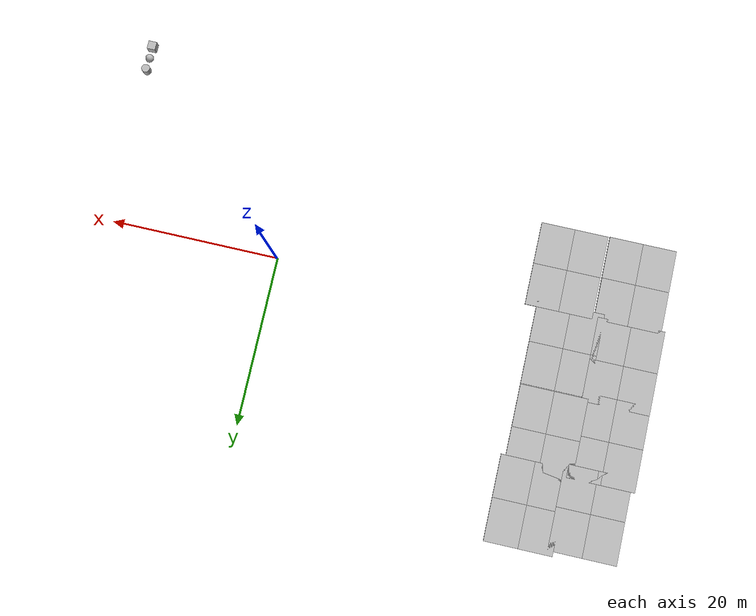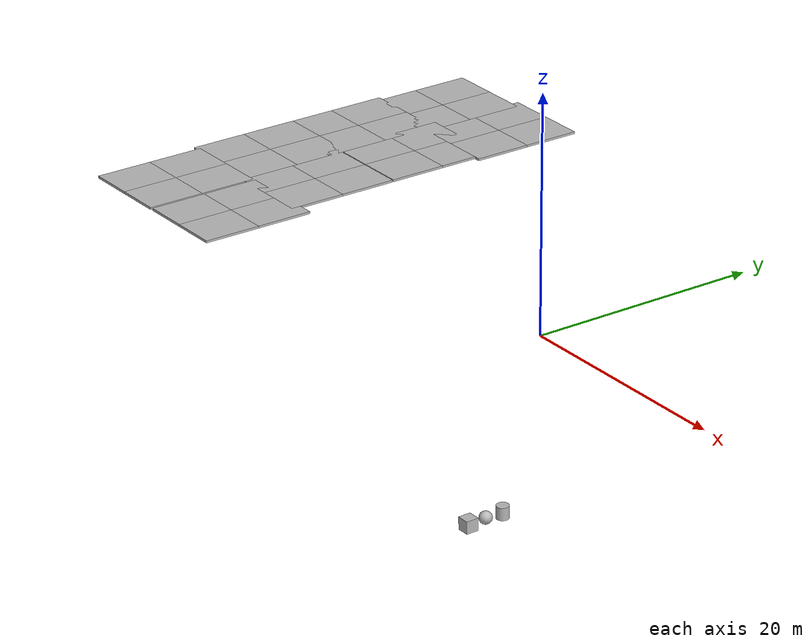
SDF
<sdf version="1.6">
 <world name="default">
  <light name="sun" type="directional">
   <pose>0 0 10 0 -0 0</pose>
   <diffuse>0.8 0.8 0.8 1</diffuse>
   <specular>0.2 0.2 0.2 1</specular>
   <attenuation>
    <range>1000</range>
    <constant>0.9</constant>
    <linear>0.01</linear>
    <quadratic>0.001</quadratic>
   </attenuation>
   <direction>-0.5 0.1 -0.9</direction>
  </light>
  <gravity>0 0 -9.8</gravity>
  <magnetic_field>6e-06 2.3e-05 -4.2e-05</magnetic_field>
  <atmosphere type="adiabatic"/>
  <physics name="default_physics" default="0" type="ode">
   <max_step_size>0.001</max_step_size>
   <real_time_factor>1</real_time_factor>
   <real_time_update_rate>1000</real_time_update_rate>
  </physics>
  <scene><ambient>0.4 0.4 0.4 1</ambient><background>0.7 0.7 0.7 1</background><shadows>1</shadows></scene>
  <audio><device>default</device></audio>
  <spherical_coordinates>
   <surface_model>EARTH_WGS84</surface_model>
   <latitude_deg>0</latitude_deg>
   <longitude_deg>0</longitude_deg>
   <elevation>0</elevation>
   <heading_deg>0</heading_deg>
  </spherical_coordinates>
  <model name="mud_box">
   <static>1</static>
   <link name="link">
    <collision name="collision"><geometry><box><size>8 10 0.2</size></box></geometry></collision>
    <visual name="visual_1">
     <pose>-2 2.5 0 0 -0 0</pose>
     <cast_shadows>0</cast_shadows>
     <geometry><box><size>4 5 0.2</size></box></geometry>
     <material>
      <script>
       <uri>model://mud_box/materials/scripts</uri>
       <uri>model://mud_box/materials/textures</uri>
       <name>vrc/mud</name>
      </script>
     </material>
    </visual>
    <visual name="visual_2">
     <pose>2 2.5 0 0 -0 0</pose>
     <cast_shadows>0</cast_shadows>
     <geometry><box><size>4 5 0.2</size></box></geometry>
     <material>
      <script>
       <uri>model://mud_box/materials/scripts</uri>
       <uri>model://mud_box/materials/textures</uri>
       <name>vrc/mud</name>
      </script>
     </material>
    </visual>
    <visual name="visual_3">
     <pose>2 -2.5 0 0 -0 0</pose>
     <cast_shadows>0</cast_shadows>
     <geometry><box><size>4 5 0.2</size></box></geometry>
     <material>
      <script>
       <uri>model://mud_box/materials/scripts</uri>
       <uri>model://mud_box/materials/textures</uri>
       <name>vrc/mud</name>
      </script>
     </material>
    </visual>
    <visual name="visual_4">
     <pose>-2 -2.5 0 0 -0 0</pose>
     <cast_shadows>0</cast_shadows>
     <geometry><box><size>4 5 0.2</size></box></geometry>
     <material>
      <script>
       <uri>model://mud_box/materials/scripts</uri>
       <uri>model://mud_box/materials/textures</uri>
       <name>vrc/mud</name>
      </script>
     </material>
    </visual>
   </link>
   <pose>-41.8138 -6.19921 0 0 -0 0</pose>
  </model>
  <model name="mud_box_0">
   <static>1</static>
   <link name="link">
    <collision name="collision"><geometry><box><size>8 10 0.2</size></box></geometry></collision>
    <visual name="visual_1">
     <pose>-2 2.5 0 0 -0 0</pose>
     <cast_shadows>0</cast_shadows>
     <geometry><box><size>4 5 0.2</size></box></geometry>
     <material>
      <script>
       <uri>model://mud_box/materials/scripts</uri>
       <uri>model://mud_box/materials/textures</uri>
       <name>vrc/mud</name>
      </script>
     </material>
    </visual>
    <visual name="visual_2">
     <pose>2 2.5 0 0 -0 0</pose>
     <cast_shadows>0</cast_shadows>
     <geometry><box><size>4 5 0.2</size></box></geometry>
     <material>
      <script>
       <uri>model://mud_box/materials/scripts</uri>
       <uri>model://mud_box/materials/textures</uri>
       <name>vrc/mud</name>
      </script>
     </material>
    </visual>
    <visual name="visual_3">
     <pose>2 -2.5 0 0 -0 0</pose>
     <cast_shadows>0</cast_shadows>
     <geometry><box><size>4 5 0.2</size></box></geometry>
     <material>
      <script>
       <uri>model://mud_box/materials/scripts</uri>
       <uri>model://mud_box/materials/textures</uri>
       <name>vrc/mud</name>
      </script>
     </material>
    </visual>
    <visual name="visual_4">
     <pose>-2 -2.5 0 0 -0 0</pose>
     <cast_shadows>0</cast_shadows>
     <geometry><box><size>4 5 0.2</size></box></geometry>
     <material>
      <script>
       <uri>model://mud_box/materials/scripts</uri>
       <uri>model://mud_box/materials/textures</uri>
       <name>vrc/mud</name>
      </script>
     </material>
    </visual>
   </link>
   <pose>-42.239 3.46815 0 0 -0 0</pose>
  </model>
  <model name="mud_box_1">
   <static>1</static>
   <link name="link">
    <collision name="collision"><geometry><box><size>8 10 0.2</size></box></geometry></collision>
    <visual name="visual_1">
     <pose>-2 2.5 0 0 -0 0</pose>
     <cast_shadows>0</cast_shadows>
     <geometry><box><size>4 5 0.2</size></box></geometry>
     <material>
      <script>
       <uri>model://mud_box/materials/scripts</uri>
       <uri>model://mud_box/materials/textures</uri>
       <name>vrc/mud</name>
      </script>
     </material>
    </visual>
    <visual name="visual_2">
     <pose>2 2.5 0 0 -0 0</pose>
     <cast_shadows>0</cast_shadows>
     <geometry><box><size>4 5 0.2</size></box></geometry>
     <material>
      <script>
       <uri>model://mud_box/materials/scripts</uri>
       <uri>model://mud_box/materials/textures</uri>
       <name>vrc/mud</name>
      </script>
     </material>
    </visual>
    <visual name="visual_3">
     <pose>2 -2.5 0 0 -0 0</pose>
     <cast_shadows>0</cast_shadows>
     <geometry><box><size>4 5 0.2</size></box></geometry>
     <material>
      <script>
       <uri>model://mud_box/materials/scripts</uri>
       <uri>model://mud_box/materials/textures</uri>
       <name>vrc/mud</name>
      </script>
     </material>
    </visual>
    <visual name="visual_4">
     <pose>-2 -2.5 0 0 -0 0</pose>
     <cast_shadows>0</cast_shadows>
     <geometry><box><size>4 5 0.2</size></box></geometry>
     <material>
      <script>
       <uri>model://mud_box/materials/scripts</uri>
       <uri>model://mud_box/materials/textures</uri>
       <name>vrc/mud</name>
      </script>
     </material>
    </visual>
   </link>
   <pose>-42.2244 12.4245 0 0 -0 0</pose>
  </model>
  <model name="mud_box_2">
   <static>1</static>
   <link name="link">
    <collision name="collision"><geometry><box><size>8 10 0.2</size></box></geometry></collision>
    <visual name="visual_1">
     <pose>-2 2.5 0 0 -0 0</pose>
     <cast_shadows>0</cast_shadows>
     <geometry><box><size>4 5 0.2</size></box></geometry>
     <material>
      <script>
       <uri>model://mud_box/materials/scripts</uri>
       <uri>model://mud_box/materials/textures</uri>
       <name>vrc/mud</name>
      </script>
     </material>
    </visual>
    <visual name="visual_2">
     <pose>2 2.5 0 0 -0 0</pose>
     <cast_shadows>0</cast_shadows>
     <geometry><box><size>4 5 0.2</size></box></geometry>
     <material>
      <script>
       <uri>model://mud_box/materials/scripts</uri>
       <uri>model://mud_box/materials/textures</uri>
       <name>vrc/mud</name>
      </script>
     </material>
    </visual>
    <visual name="visual_3">
     <pose>2 -2.5 0 0 -0 0</pose>
     <cast_shadows>0</cast_shadows>
     <geometry><box><size>4 5 0.2</size></box></geometry>
     <material>
      <script>
       <uri>model://mud_box/materials/scripts</uri>
       <uri>model://mud_box/materials/textures</uri>
       <name>vrc/mud</name>
      </script>
     </material>
    </visual>
    <visual name="visual_4">
     <pose>-2 -2.5 0 0 -0 0</pose>
     <cast_shadows>0</cast_shadows>
     <geometry><box><size>4 5 0.2</size></box></geometry>
     <material>
      <script>
       <uri>model://mud_box/materials/scripts</uri>
       <uri>model://mud_box/materials/textures</uri>
       <name>vrc/mud</name>
      </script>
     </material>
    </visual>
   </link>
   <pose>-41.7341 20.8744 0 0 -0 0</pose>
  </model>
  <model name="mud_box_3">
   <static>1</static>
   <link name="link">
    <collision name="collision"><geometry><box><size>8 10 0.2</size></box></geometry></collision>
    <visual name="visual_1">
     <pose>-2 2.5 0 0 -0 0</pose>
     <cast_shadows>0</cast_shadows>
     <geometry><box><size>4 5 0.2</size></box></geometry>
     <material>
      <script>
       <uri>model://mud_box/materials/scripts</uri>
       <uri>model://mud_box/materials/textures</uri>
       <name>vrc/mud</name>
      </script>
     </material>
    </visual>
    <visual name="visual_2">
     <pose>2 2.5 0 0 -0 0</pose>
     <cast_shadows>0</cast_shadows>
     <geometry><box><size>4 5 0.2</size></box></geometry>
     <material>
      <script>
       <uri>model://mud_box/materials/scripts</uri>
       <uri>model://mud_box/materials/textures</uri>
       <name>vrc/mud</name>
      </script>
     </material>
    </visual>
    <visual name="visual_3">
     <pose>2 -2.5 0 0 -0 0</pose>
     <cast_shadows>0</cast_shadows>
     <geometry><box><size>4 5 0.2</size></box></geometry>
     <material>
      <script>
       <uri>model://mud_box/materials/scripts</uri>
       <uri>model://mud_box/materials/textures</uri>
       <name>vrc/mud</name>
      </script>
     </material>
    </visual>
    <visual name="visual_4">
     <pose>-2 -2.5 0 0 -0 0</pose>
     <cast_shadows>0</cast_shadows>
     <geometry><box><size>4 5 0.2</size></box></geometry>
     <material>
      <script>
       <uri>model://mud_box/materials/scripts</uri>
       <uri>model://mud_box/materials/textures</uri>
       <name>vrc/mud</name>
      </script>
     </material>
    </visual>
   </link>
   <pose>-33.6055 -6.14651 0 0 -0 0</pose>
  </model>
  <model name="mud_box_4">
   <static>1</static>
   <link name="link">
    <collision name="collision"><geometry><box><size>8 10 0.2</size></box></geometry></collision>
    <visual name="visual_1">
     <pose>-2 2.5 0 0 -0 0</pose>
     <cast_shadows>0</cast_shadows>
     <geometry><box><size>4 5 0.2</size></box></geometry>
     <material>
      <script>
       <uri>model://mud_box/materials/scripts</uri>
       <uri>model://mud_box/materials/textures</uri>
       <name>vrc/mud</name>
      </script>
     </material>
    </visual>
    <visual name="visual_2">
     <pose>2 2.5 0 0 -0 0</pose>
     <cast_shadows>0</cast_shadows>
     <geometry><box><size>4 5 0.2</size></box></geometry>
     <material>
      <script>
       <uri>model://mud_box/materials/scripts</uri>
       <uri>model://mud_box/materials/textures</uri>
       <name>vrc/mud</name>
      </script>
     </material>
    </visual>
    <visual name="visual_3">
     <pose>2 -2.5 0 0 -0 0</pose>
     <cast_shadows>0</cast_shadows>
     <geometry><box><size>4 5 0.2</size></box></geometry>
     <material>
      <script>
       <uri>model://mud_box/materials/scripts</uri>
       <uri>model://mud_box/materials/textures</uri>
       <name>vrc/mud</name>
      </script>
     </material>
    </visual>
    <visual name="visual_4">
     <pose>-2 -2.5 0 0 -0 0</pose>
     <cast_shadows>0</cast_shadows>
     <geometry><box><size>4 5 0.2</size></box></geometry>
     <material>
      <script>
       <uri>model://mud_box/materials/scripts</uri>
       <uri>model://mud_box/materials/textures</uri>
       <name>vrc/mud</name>
      </script>
     </material>
    </visual>
   </link>
   <pose>-34.9548 3.01527 0 0 -0 0</pose>
  </model>
  <model name="mud_box_5">
   <static>1</static>
   <link name="link">
    <collision name="collision"><geometry><box><size>8 10 0.2</size></box></geometry></collision>
    <visual name="visual_1">
     <pose>-2 2.5 0 0 -0 0</pose>
     <cast_shadows>0</cast_shadows>
     <geometry><box><size>4 5 0.2</size></box></geometry>
     <material>
      <script>
       <uri>model://mud_box/materials/scripts</uri>
       <uri>model://mud_box/materials/textures</uri>
       <name>vrc/mud</name>
      </script>
     </material>
    </visual>
    <visual name="visual_2">
     <pose>2 2.5 0 0 -0 0</pose>
     <cast_shadows>0</cast_shadows>
     <geometry><box><size>4 5 0.2</size></box></geometry>
     <material>
      <script>
       <uri>model://mud_box/materials/scripts</uri>
       <uri>model://mud_box/materials/textures</uri>
       <name>vrc/mud</name>
      </script>
     </material>
    </visual>
    <visual name="visual_3">
     <pose>2 -2.5 0 0 -0 0</pose>
     <cast_shadows>0</cast_shadows>
     <geometry><box><size>4 5 0.2</size></box></geometry>
     <material>
      <script>
       <uri>model://mud_box/materials/scripts</uri>
       <uri>model://mud_box/materials/textures</uri>
       <name>vrc/mud</name>
      </script>
     </material>
    </visual>
    <visual name="visual_4">
     <pose>-2 -2.5 0 0 -0 0</pose>
     <cast_shadows>0</cast_shadows>
     <geometry><box><size>4 5 0.2</size></box></geometry>
     <material>
      <script>
       <uri>model://mud_box/materials/scripts</uri>
       <uri>model://mud_box/materials/textures</uri>
       <name>vrc/mud</name>
      </script>
     </material>
    </visual>
   </link>
   <pose>-34.9685 13.0938 0 0 -0 0</pose>
  </model>
  <model name="mud_box_6">
   <static>1</static>
   <link name="link">
    <collision name="collision"><geometry><box><size>8 10 0.2</size></box></geometry></collision>
    <visual name="visual_1">
     <pose>-2 2.5 0 0 -0 0</pose>
     <cast_shadows>0</cast_shadows>
     <geometry><box><size>4 5 0.2</size></box></geometry>
     <material>
      <script>
       <uri>model://mud_box/materials/scripts</uri>
       <uri>model://mud_box/materials/textures</uri>
       <name>vrc/mud</name>
      </script>
     </material>
    </visual>
    <visual name="visual_2">
     <pose>2 2.5 0 0 -0 0</pose>
     <cast_shadows>0</cast_shadows>
     <geometry><box><size>4 5 0.2</size></box></geometry>
     <material>
      <script>
       <uri>model://mud_box/materials/scripts</uri>
       <uri>model://mud_box/materials/textures</uri>
       <name>vrc/mud</name>
      </script>
     </material>
    </visual>
    <visual name="visual_3">
     <pose>2 -2.5 0 0 -0 0</pose>
     <cast_shadows>0</cast_shadows>
     <geometry><box><size>4 5 0.2</size></box></geometry>
     <material>
      <script>
       <uri>model://mud_box/materials/scripts</uri>
       <uri>model://mud_box/materials/textures</uri>
       <name>vrc/mud</name>
      </script>
     </material>
    </visual>
    <visual name="visual_4">
     <pose>-2 -2.5 0 0 -0 0</pose>
     <cast_shadows>0</cast_shadows>
     <geometry><box><size>4 5 0.2</size></box></geometry>
     <material>
      <script>
       <uri>model://mud_box/materials/scripts</uri>
       <uri>model://mud_box/materials/textures</uri>
       <name>vrc/mud</name>
      </script>
     </material>
    </visual>
   </link>
   <pose>-34.4196 21.4434 0 0 -0 0</pose>
  </model>
  <model name="textured_shapes">
   <pose>21.0877 -20.6789 -0.441407 0.019647 0.000403 1.9e-05</pose>
   <link name="box">
    <pose>0 -1.5 0 0 -0 0</pose>
    <collision name="collision"><geometry><box><size>1 1 1</size></box></geometry></collision>
    <visual name="visual">
     <geometry><box><size>1 1 1</size></box></geometry>
     <material>
      <script>
       <uri>model://textured_shapes/materials/scripts</uri>
       <uri>model://textured_shapes/materials/textures</uri>
       <name>TexturedShape/Squares</name>
      </script>
     </material>
    </visual>
    <inertial>
     <inertia><ixx>1</ixx><ixy>0</ixy><ixz>0</ixz><iyy>1</iyy><iyz>0</iyz><izz>1</izz></inertia>
     <mass>1</mass>
    </inertial>
   </link>
   <link name="sphere">
    <collision name="collision"><geometry><sphere><radius>0.5</radius></sphere></geometry></collision>
    <visual name="visual">
     <geometry><sphere><radius>0.5</radius></sphere></geometry>
     <material>
      <script>
       <uri>model://textured_shapes/materials/scripts</uri>
       <uri>model://textured_shapes/materials/textures</uri>
       <name>TexturedShape/Squares</name>
      </script>
     </material>
    </visual>
    <inertial>
     <inertia><ixx>1</ixx><ixy>0</ixy><ixz>0</ixz><iyy>1</iyy><iyz>0</iyz><izz>1</izz></inertia>
     <mass>1</mass>
    </inertial>
   </link>
   <link name="cylinder">
    <pose>0 1.5 0 0 -0 0</pose>
    <collision name="collision">
     <geometry><cylinder><radius>0.5</radius><length>1</length></cylinder></geometry>
    </collision>
    <visual name="visual">
     <geometry><cylinder><radius>0.5</radius><length>1</length></cylinder></geometry>
     <material>
      <script>
       <uri>model://textured_shapes/materials/scripts</uri>
       <uri>model://textured_shapes/materials/textures</uri>
       <name>TexturedShape/Squares</name>
      </script>
     </material>
    </visual>
    <inertial>
     <inertia><ixx>1</ixx><ixy>0</ixy><ixz>0</ixz><iyy>1</iyy><iyz>0</iyz><izz>1</izz></inertia>
     <mass>1</mass>
    </inertial>
   </link>
  </model>
 </world>
</sdf>
